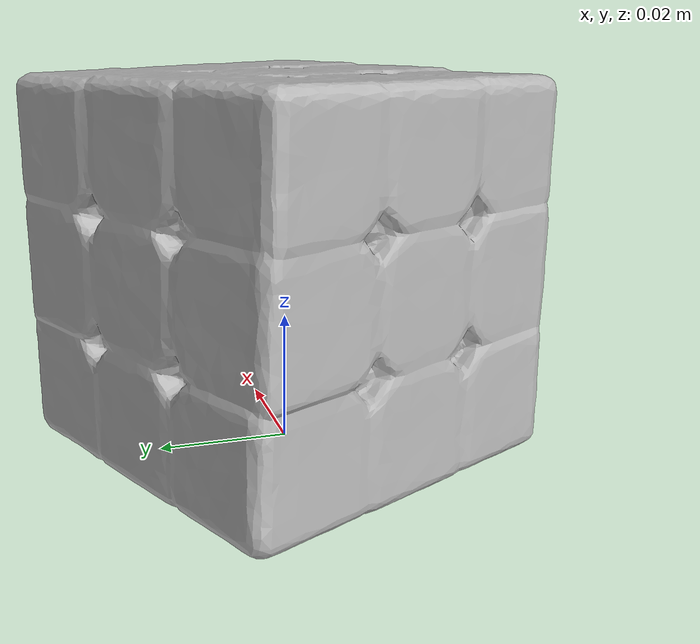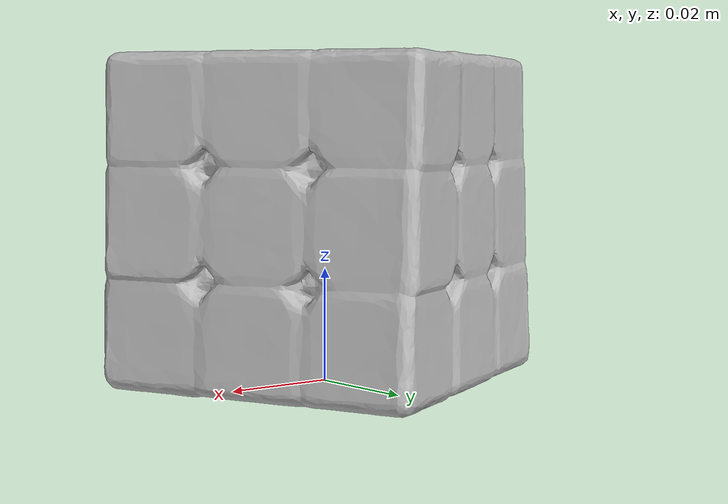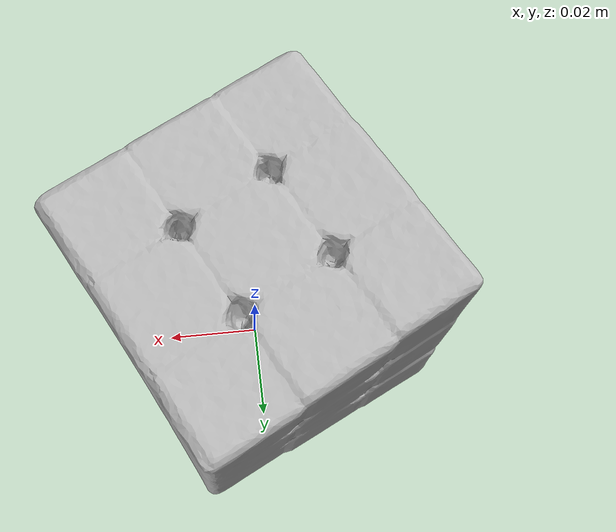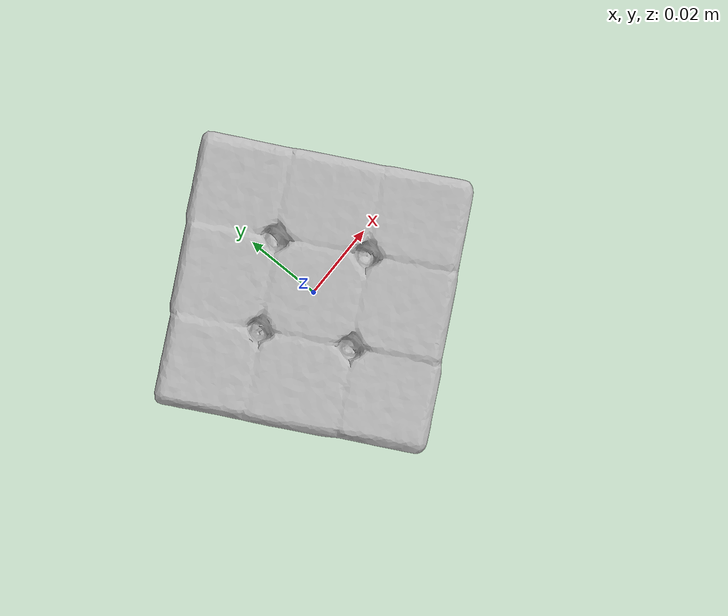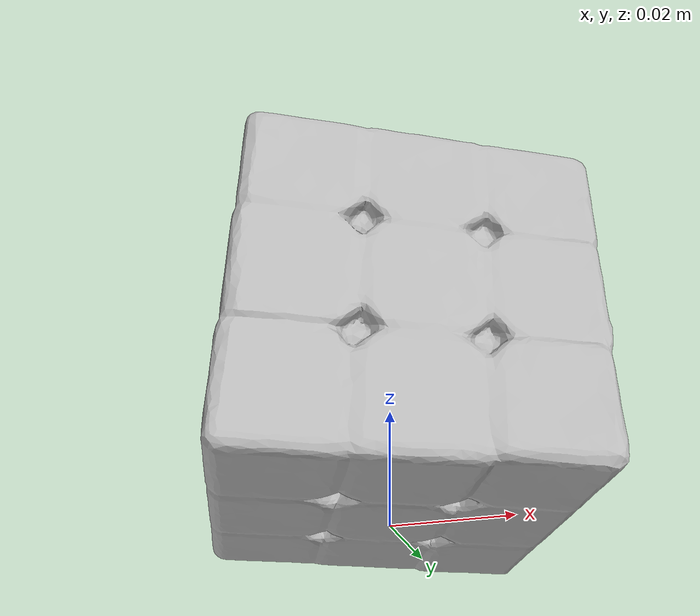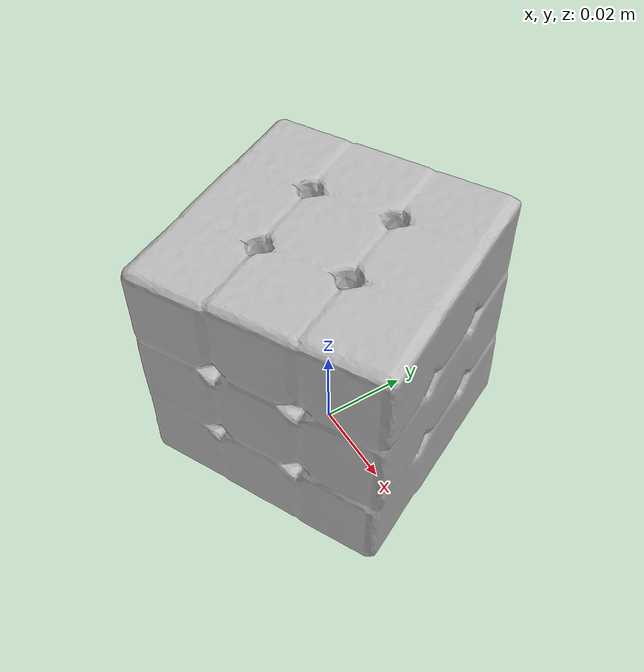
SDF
<?xml version="1.0" ?>
<sdf version='1.8'>
  <model name='ycb_077_rubiks_cube'>
    <link name='body'>
      <inertial>
        <mass>0.094</mass>
        <pose>-8.50498434e-05 1.47094022e-05 0.0288389281 0 0 0</pose>
        <inertia>
          <ixx>5.06042440183e-05</ixx>
          <ixy>5.65109585679e-08</ixy>
          <ixz>-3.72003480469e-08</ixz>
          <iyy>5.05384944772e-05</iyy>
          <iyz>2.4774247491e-08</iyz>
          <izz>5.05085811997e-05</izz>
        </inertia>
      </inertial>
      <visual name='ycb_077_rubiks_cube_visual'>
        <pose>0.016134 0.0005 0.000249 0 0 0</pose>
        <geometry>
          <mesh>
            <uri>model://ycb_077_rubiks_cube/meshes/textured.dae</uri>
          </mesh>
        </geometry>
      </visual>
      <collision name='ycb_077_rubiks_cube_collision'>
        <pose>0.016134 0.0005 0.000249 0 0 0</pose>
        <geometry>
          <mesh>
            <uri>model://ycb_077_rubiks_cube/meshes/nontextured.stl</uri>
          </mesh>
        </geometry>
        <max_contacts>10</max_contacts>
        <surface>
          <contact>
            <ode>
              <kp>1e15</kp>
              <kd>1e13</kd>
            </ode>
          </contact>
        </surface>
      </collision>
    </link>
  </model>
</sdf>
